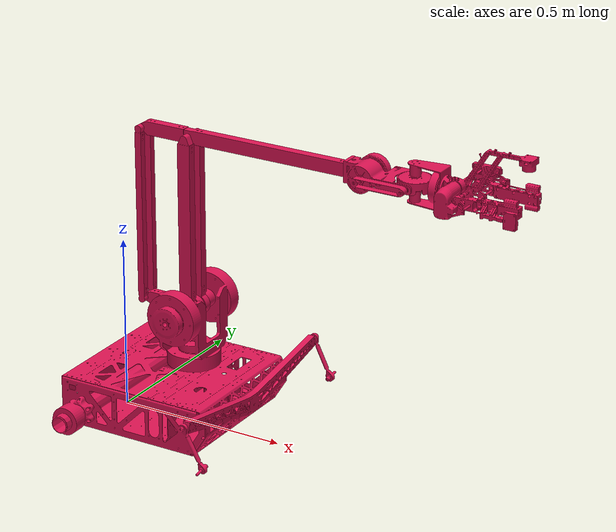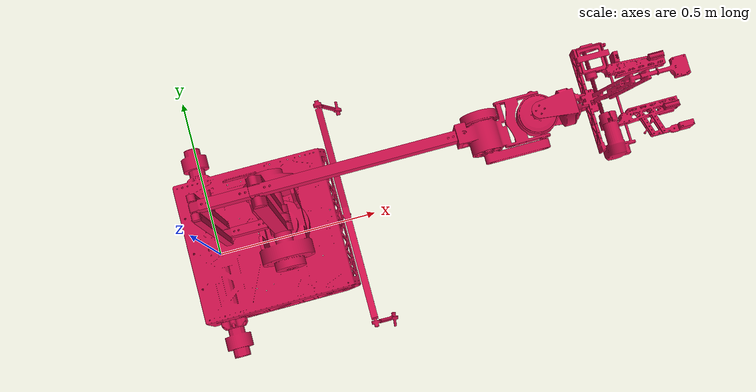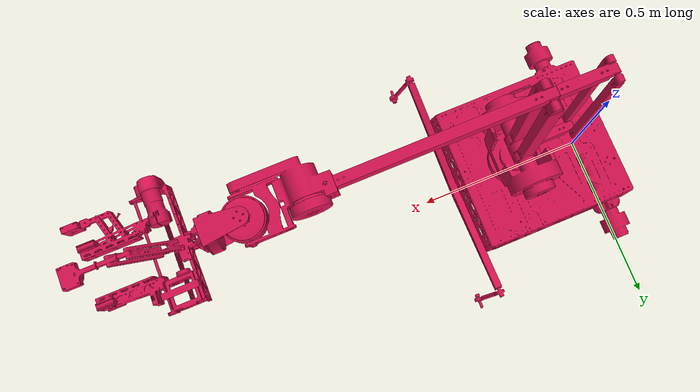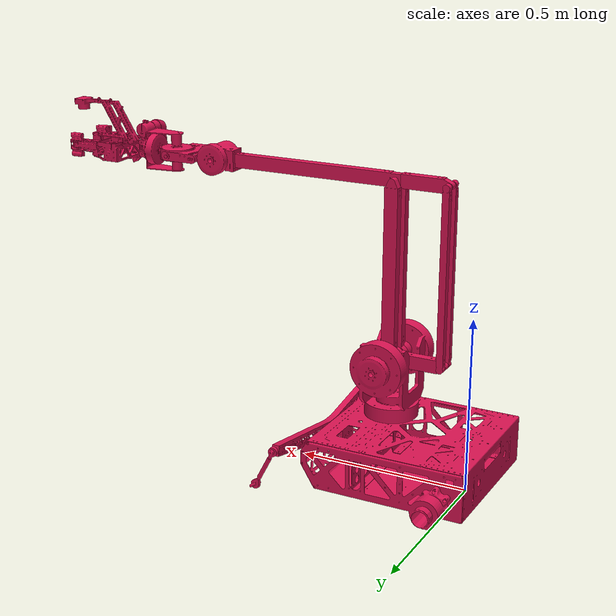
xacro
<?xml version="1.0" encoding="utf-8"?>
<robot name="arm"  xmlns:xacro="http://www.ros.org/wiki/xacro">
    <!-- Loading args -->
    <xacro:arg name="gazebo" default="true"/>
    <xacro:arg name="robot_name" default="arm"/>
    <xacro:arg name="arm" default="false"/>
    <xacro:arg name="use_mock_hardware" default="false"/>
    <xacro:arg name="rover_description_dir" default="$(find rover_description)" />

    <!-- Generated URDF -->
    <link name="gearbox">
        <visual>
            <origin xyz="0 2.4651903288156618919e-32 0" rpy="3.141592653589793116 -0 -8.5706935653614731626e-49" />
            <geometry>
                <mesh filename="file://$(arg rover_description_dir)/arm/newmeshes/gearbox.stl"/>
            </geometry>
            <material name="gearbox_material">
                <color rgba="0.86666666666666669627 0.074509803921568626417 0.32549019607843138191 1.0"/>
            </material>
        </visual>
        <collision>
            <origin xyz="0 2.4651903288156618919e-32 -0.035000000000000003331" rpy="3.141592653589793116 -0 -8.5706935653614731626e-49" />
            <geometry>
                <cylinder length="0.010000000000000000208" radius="0.074999999999999997224" />
            </geometry>
        </collision>
        <collision>
            <origin xyz="0 2.4651903288156618919e-32 -0.048000000000000000999" rpy="3.141592653589793116 -0 -8.5706935653614731626e-49" />
            <geometry>
                <cylinder length="0.035000000000000003331" radius="0.043999999999999997446" />
            </geometry>
        </collision>
        <collision>
            <origin xyz="0.05999999999999999778 2.4651903288156618919e-32 -0.05999999999999999778" rpy="3.141592653589793116 -0 -1.570796326794896558" />
            <geometry>
                <box size="0.14999999999999999445 0.010000000000000000208 0.040000000000000000833" />
            </geometry>
        </collision>
        <collision>
            <origin xyz="0.05999999999999999778 -0.055000000000000000278 -0.13500000000000000888" rpy="3.141592653589793116 -0 -1.570796326794896558" />
            <geometry>
                <box size="0.040000000000000000833 0.010000000000000000208 0.16000000000000000333" />
            </geometry>
        </collision>
        <collision>
            <origin xyz="0.05999999999999999778 0.055000000000000000278 -0.13500000000000000888" rpy="3.141592653589793116 -0 -1.570796326794896558" />
            <geometry>
                <box size="0.040000000000000000833 0.010000000000000000208 0.16000000000000000333" />
            </geometry>
        </collision>
        <collision>
            <origin xyz="-0.05999999999999999778 2.4651903288156618919e-32 -0.05999999999999999778" rpy="3.141592653589793116 -0 -1.570796326794896558" />
            <geometry>
                <box size="0.14999999999999999445 0.010000000000000000208 0.040000000000000000833" />
            </geometry>
        </collision>
        <collision>
            <origin xyz="-0.05999999999999999778 -0.055000000000000000278 -0.13500000000000000888" rpy="3.141592653589793116 -0 -1.570796326794896558" />
            <geometry>
                <box size="0.040000000000000000833 0.010000000000000000208 0.16000000000000000333" />
            </geometry>
        </collision>
        <collision>
            <origin xyz="-0.05999999999999999778 0.055000000000000000278 -0.13500000000000000888" rpy="3.141592653589793116 -0 -1.570796326794896558" />
            <geometry>
                <box size="0.040000000000000000833 0.010000000000000000208 0.16000000000000000333" />
            </geometry>
        </collision>
        <collision>
            <origin xyz="0 2.4651903288156618919e-32 -0.16500000000000000777" rpy="-1.570796326794896558 -0 -8.5706935653614731626e-49" />
            <geometry>
                <cylinder length="0.16000000000000000333" radius="0.025000000000000001388" />
            </geometry>
        </collision>
        <collision>
            <origin xyz="8.2522951990120668626e-49 0.09500000000000000111 -0.16500000000000000777" rpy="-1.570796326794896558 -0 -8.5706935653614731626e-49" />
            <geometry>
                <cylinder length="0.040000000000000000833" radius="0.074999999999999997224" />
            </geometry>
        </collision>
        <collision>
            <origin xyz="1.0684550626089307014e-48 0.12299999999999999822 -0.16500000000000000777" rpy="-1.570796326794896558 -0 -8.5706935653614731626e-49" />
            <geometry>
                <cylinder length="0.035000000000000003331" radius="0.043999999999999997446" />
            </geometry>
        </collision>
        <collision>
            <origin xyz="-8.2522951990120668626e-49 -0.09500000000000000111 -0.16500000000000000777" rpy="1.570796326794896558 -0 -8.5706935653614731626e-49" />
            <geometry>
                <cylinder length="0.040000000000000000833" radius="0.074999999999999997224" />
            </geometry>
        </collision>
        <collision>
            <origin xyz="-1.0684550626089307014e-48 -0.12299999999999999822 -0.16500000000000000777" rpy="1.570796326794896558 -0 -8.5706935653614731626e-49" />
            <geometry>
                <cylinder length="0.035000000000000003331" radius="0.043999999999999997446" />
            </geometry>
        </collision>
        <inertial>
            <origin xyz="2.558521196269415307e-06 -2.5804048544815182493e-06 -0.11873329240962517128" rpy="0 0 0"/>
            <mass value="7.8835913444856782206" />
            <inertia ixx="0.092107948674126569055" ixy="2.7189957247125400849e-06" ixz="-2.3903157004658651547e-06" iyy="0.050452829745700415731" iyz="9.7642586194091336146e-06" izz="0.065017320943512479925" />
        </inertial>
    </link>

    <link name="l1_alpha">
        <visual>
            <origin xyz="0 0 -0.036699999999999961819" rpy="1.570796326794896558 1.5707963267948938935 0" />
            <geometry>
                <mesh filename="file://$(arg rover_description_dir)/arm/newmeshes/l1_alpha.stl"/>
            </geometry>
            <material name="l1_alpha_material">
                <color rgba="0.86666666666666669627 0.074509803921568626417 0.32549019607843138191 1.0"/>
            </material>
        </visual>
        <collision>
            <origin xyz="4.3478165439869462079e-18 -3.0830227432059023959e-17 -0.025699999999999955519" rpy="-3.1415926535897926719 -2.802747948369002084e-15 1.570796326794896558" />
            <geometry>
                <cylinder length="0.021999999999999998723" radius="0.032000000000000000666" />
            </geometry>
        </collision>
        <collision>
            <origin xyz="4.3478165439860941765e-18 -0.27000000000000007327 -0.025700000000000711858" rpy="1.570796326794896558 1.5707963267948938935 0" />
            <geometry>
                <box size="0.025000000000000001388 0.037999999999999999056 0.47999999999999998224" />
            </geometry>
        </collision>
        <collision>
            <origin xyz="2.4901131115561601639e-17 -1.7657312074724714451e-16 0.026300000000000045564" rpy="-3.1415926535897926719 -2.802747948369002084e-15 1.570796326794896558" />
            <geometry>
                <cylinder length="0.021999999999999998723" radius="0.032000000000000000666" />
            </geometry>
        </collision>
        <collision>
            <origin xyz="2.4901131115560751149e-17 -0.2700000000000001843 0.026299999999999282285" rpy="1.570796326794896558 1.5707963267948938935 0" />
            <geometry>
                <box size="0.025000000000000001388 0.037999999999999999056 0.47999999999999998224" />
            </geometry>
        </collision>
        <inertial>
            <origin xyz="-6.5605808530515644914e-16 -0.23328621342780628267 -6.2450045135165055399e-17" rpy="0 0 0"/>
            <mass value="0.94332586983199562258" />
            <inertia ixx="0.033448744649335601653" ixy="-2.9524164513920976063e-32" ixz="-2.0062381951294159102e-19" iyy="0.00087421429984669717008" iyz="-8.9875581047345195556e-17" izz="0.032941165271890511523" />
        </inertial>
    </link>

    <link name="l2_alpha_long">
        <visual>
            <origin xyz="1.1102230246251565404e-16 0 1.2143064331837649661e-17" rpy="-3.141592653589793116 -2.2632479597972562571e-15 1.4791141972893424845e-30" />
            <geometry>
                <mesh filename="file://$(arg rover_description_dir)/arm/newmeshes/l2_alpha_long.stl"/>
            </geometry>
            <material name="l2_alpha_long_material">
                <color rgba="0.86666666666666669627 0.074509803921568626417 0.32549019607843138191 1.0"/>
            </material>
        </visual>
        <!-- Shapes for l2_alpha_long -->
        <collision>
            <origin xyz="1.1102230246251565404e-16 0.014999999999999999445 1.2332512979113024229e-17" rpy="-3.141592653589793116 -2.2632479597972562571e-15 1.4791141972893424845e-30" />
            <geometry>
                <box size="0.035000000000000003331 0.05999999999999999778 0.021799999999999999933" />
            </geometry>
        </collision>
        <collision>
            <origin xyz="1.110223024625157773e-16 0.25 1.5300541786427231954e-17" rpy="-3.141592653589793116 -2.2632479597972562571e-15 1.4791141972893424845e-30" />
            <geometry>
                <box size="0.037999999999999999056 0.46999999999999997335 0.025000000000000001388" />
            </geometry>
        </collision>
        <collision>
            <origin xyz="1.1102230246251590056e-16 0.5 1.8458019241016814247e-17" rpy="-3.141592653589793116 -2.2632479597972562571e-15 1.4791141972893424845e-30" />
            <geometry>
                <box size="0.05999999999999999778 0.02999999999999999889 0.048000000000000000999" />
            </geometry>
        </collision>
        <collision>
            <origin xyz="1.274308501710460247e-16 0.54849999999999998757 -0.0072499999999999812858" rpy="-3.141592653589793116 -2.2632479597972562571e-15 1.4791141972893424845e-30" />
            <geometry>
                <cylinder length="0.10000000000000000555" radius="0.043499999999999997002" />
            </geometry>
        </collision>
        <collision>
            <origin xyz="2.6718641168852655864e-16 0.54849999999999998757 -0.068999999999999991895" rpy="-3.141592653589793116 -2.2632479597972562571e-15 1.4791141972893424845e-30" />
            <geometry>
                <cylinder length="0.0240000000000000005" radius="0.01200000000000000025" />
            </geometry>
        </collision>
        <inertial>
            <origin xyz="-2.0101690449400311959e-16 0.14592092316588314849 -8.7916251313975982188e-17" rpy="0 0 0"/>
            <mass value="0.41795070944222811882" />
            <inertia ixx="0.010968252318546299964" ixy="1.6586140805282821319e-32" ixz="-7.6840734421473914162e-20" iyy="9.8064013102507565267e-05" iyz="-1.3771830278749218651e-19" izz="0.011002203850056069268" />
        </inertial>
    </link>

    <joint name="l1a_tp" type="revolute">
        <origin xyz="-1.3322676295501878485e-15 -0.50000000000000133227 -1.5026893879883321953e-18" rpy="1.1042302148529803472e-15 -7.3934705663056347212e-16 -1.5707963267948998887" />
        <parent link="l1_alpha" />
        <child link="l2_alpha_long" />
        <axis xyz="0 0 1"/>
        <limit effort="20" velocity="20" lower="-1.3788101090755202627" upper="3.141592653589793116"/>
        <joint_properties friction="0.5" damping="0.5"/>
        <!-- Elbow -->
        <mimic joint="J3" multiplier="1"/>
    </joint>

    <joint name="J2" type="revolute">
        <origin xyz="-1.6653345369377348106e-16 -2.3967136596913301438e-07 -0.16497726032863463397" rpy="1.5707963267948961139 6.0217020942552186975e-15 5.3207089380869679575e-16" />
        <parent link="gearbox" />
        <child link="l1_alpha" />
        <axis xyz="0 0 1"/>
        <limit effort="20" velocity="20" lower="-2.2689280275926284602" upper="2.2689280275926284602"/>
        <joint_properties friction="0.5" damping="0.5"/>
    </joint>

    <link name="l2_beta">
        <visual>
            <origin xyz="0 5.5511151231257827021e-17 -3.4694469519536141888e-18" rpy="-3.141592653589793116 -5.71085303237718791e-16 -1.0324287375306363738e-31" />
            <geometry>
                <mesh filename="file://$(arg rover_description_dir)/arm/newmeshes/l2_beta.stl"/>
            </geometry>
            <material name="l2_beta_material">
                <color rgba="0.86666666666666669627 0.074509803921568626417 0.32549019607843138191 1.0"/>
            </material>
        </visual>
        <collision>
            <origin xyz="0 5.5511151231257827021e-17 -3.4694469519536141888e-18" rpy="-3.141592653589793116 -5.7108530323771790353e-16 1.9975444575453675019e-30" />
            <geometry>
                <cylinder length="0.021999999999999998723" radius="0.032000000000000000666" />
            </geometry>
        </collision>
        <collision>
            <origin xyz="-0.092999999999999999334 5.5511151231257642132e-17 -5.6580380153061379809e-17" rpy="-3.141592653589793116 -5.7108530323771790353e-16 1.9975444575453675019e-30" />
            <geometry>
                <box size="0.13400000000000000799 0.037999999999999999056 0.025000000000000001388" />
            </geometry>
        </collision>
        <inertial>
            <origin xyz="-0.067222086625795207659 -2.2734157836893688816e-15 4.1346710175237741049e-16" rpy="0 0 0"/>
            <mass value="0.28202404209848125349" />
            <inertia ixx="7.0414185264169789355e-05" ixy="-4.8860468682764694418e-35" ixz="-4.5301784482906341954e-19" iyy="0.0008227401802816908076" iyz="-9.6972564277976928301e-21" izz="0.0008636719389845305293" />
        </inertial>
    </link>

    <link name="l1_beta">
        <visual>
            <origin xyz="0 0 -2.7755575615628913511e-17" rpy="-1.5707963267949001107 3.3735685396344910483e-18 5.0536401740721068784e-31" />
            <geometry>
                <mesh filename="file://$(arg rover_description_dir)/arm/newmeshes/l1_beta.stl"/>
            </geometry>
            <material name="l1_beta_material">
                <color rgba="0.86666666666666669627 0.074509803921568626417 0.32549019607843138191 1.0"/>
            </material>
        </visual>
        <collision>
            <origin xyz="-7.7592076411601941632e-20 0.24999999999999997224 -0.023000000000000880851" rpy="-1.5707963267949001107 3.3735685396347876415e-18 0" />
            <geometry>
                <box size="0.025000000000000001388 0.020000000000000000416 0.52000000000000001776" />
            </geometry>
        </collision>
        <collision>
            <origin xyz="7.7592076411601941632e-20 0.25000000000000011102 0.022999999999999118372" rpy="-1.5707963267949001107 3.3735685396347876415e-18 0" />
            <geometry>
                <box size="0.025000000000000001388 0.020000000000000000416 0.52000000000000001776" />
            </geometry>
        </collision>
        <inertial>
            <origin xyz="2.798836614153263186e-16 0.24999999999999847344 -3.6337474806682215804e-17" rpy="1.5708 0 0"/>
            <mass value="0.37975038798634441761" />
            <inertia ixx="0.0087376642758323439658" ixy="-9.4160793574334216518e-33"  ixz="-2.3797630924453913318e-18" iyy="0.0086254087709059599348" iyz="-2.9737595635754853878e-17" izz="0.00016366413473864460919" />
        </inertial>
    </link>

    <link name="l2_alpha_short">
        <visual>
            <origin xyz="0 0 1.040839379542004596e-17" rpy="3.141592653589793116 5.9743071005974240584e-16 -4.93038065763027281e-32" />
            <geometry>
                <mesh filename="file://$(arg rover_description_dir)/arm/newmeshes/l2_alpha_short.stl"/>
            </geometry>
            <material name="l2_alpha_short_material">
                <color rgba="0.86666666666666669627 0.074509803921568626417 0.32549019607843138191 1.0"/>
            </material>
        </visual>
        <!-- Shapes for l2_alpha_short -->
        <collision>
            <origin xyz="-0.074999999999999997224 3.6977854932227044706e-33 5.52156970499007227e-17" rpy="3.141592653589793116 5.9743071005974240584e-16 -4.93038065763027281e-32" />
            <geometry>
                <box size="0.11999999999999999556 0.037999999999999999056 0.025000000000000001388" />
            </geometry>
        </collision>
        <collision>
            <origin xyz="-0.01200000000000000025 5.9164567891563271188e-34 1.7577562316136954978e-17" rpy="3.141592653589793116 5.9743071005974240584e-16 -4.93038065763027281e-32" />
            <geometry>
                <box size="0.020000000000000000416 0.021999999999999998723 0.021799999999999999933" />
            </geometry>
        </collision>
        <collision>
            <origin xyz="0 0 1.040839379542004596e-17" rpy="3.141592653589793116 5.9743071005974240584e-16 -4.93038065763027281e-32" />
            <geometry>
                <cylinder length="0.021799999999999999933" radius="0.010000000000000000208" />
            </geometry>
        </collision>
        <inertial>
            <origin xyz="-0.043544020231667764087 -1.2809465666530898926e-16 -4.8153669152387651739e-17" rpy="0 0 0"/>
            <mass value="0.15031228701511734069" />
            <inertia ixx="2.9990353576770037848e-05" ixy="1.1785510520822123041e-35" ixz="1.1069940729575857458e-19" iyy="0.0002053495669084461192" iyz="2.424785936437313021e-22" izz="0.00021528281583517777848" />
        </inertial>
    </link>

    <joint name="l1b_tp" type="revolute">
        <origin xyz="-9.7144514654701197287e-17 0.50000000000000077716 -1.7928585235204219303e-16" rpy="-3.1415926535897926719 7.7419697890140603855e-17 3.141592653589793116" />
        <parent link="l1_beta" />
        <child link="l2_alpha_short" />
        <axis xyz="0 0 1"/>
        <limit effort="20" velocity="20" lower="-3.141592653589793116" upper="1.3962634015954635824"/>
        <joint_properties friction="0.5" damping="0.5"/>
    </joint>

    <joint name="l1b_bp" type="revolute">
        <origin xyz="-0.14999999999999968914 2.2204460492503130808e-16 1.4483511656307847607e-16" rpy="3.1415926535897926719 2.5448498731100300324e-15 -8.5834704353344191844e-15" />
        <parent link="l2_beta" />
        <child link="l1_beta" />
        <axis xyz="0 0 1"/>
        <limit effort="20" velocity="20" lower="-1.570796326794896558" upper="3.141592653589793116"/>
        <joint_properties friction="0.5" damping="0.5"/>
        <mimic joint="J2" multiplier="-1"/>
    </joint>

    <joint name="J3" type="revolute">
        <origin xyz="2.7755575615628913511e-17 -2.3967136592029097706e-07 -0.1649772603286343009" rpy="1.570796326794896558 7.3420626327675113628e-16 -1.8112369360797040431e-15" />
        <parent link="gearbox" />
        <child link="l2_beta" />
        <axis xyz="0 0 1"/>
        <limit effort="20" velocity="20" lower="-0.69813170079773179122" upper="3.8397243543875250182"/>
        <joint_properties friction="0.5" damping="0.5"/>
    </joint>

        <link name="wrist_base">
        <visual>
            <origin xyz="-0.8698274614268546312 -0.067179037801095395355 0.5051741548438247742" rpy="3.6531397435929253516e-16 1.3616764181204636941 2.539159475309284493e-30" />
            <geometry>
                <mesh filename="file://$(arg rover_description_dir)/arm/newmeshes/wrist_base.stl"/>
            </geometry>
            <material name="wrist_base_material">
                <color rgba="0.86666666666666669627 0.074509803921568626417 0.32549019607843138191 1.0"/>
            </material>
        </visual>
        <collision>
            <origin xyz="-0.8698274614268546312 -0.067179037801095395355 0.5051741548438247742" rpy="3.6531397435929253516e-16 1.3616764181204636941 2.539159475309284493e-30" />
            <geometry>
                <mesh filename="file://$(arg rover_description_dir)/arm/newmeshes/wrist_base.stl"/>
            </geometry>
        </collision>
        <inertial>
            <origin xyz="0.00022142383999101958249 -0.0029216951159842974479 -0.064240355589534670067" rpy="0 0 0"/>
            <mass value="1.2082462644559042175" />
            <inertia ixx="0.0043513944585749919636" ixy="-1.2156132459723691896e-07" ixz="2.2627320885355476461e-05" iyy="0.0033607936718869951993" iyz="-0.0003053178521962343064" izz="0.0017777958572915036114" />
        </inertial>
    </link>

    <link name="wrist_y">
        <visual>
            <origin xyz="3.6637359812630165834e-15 -0.019472222222249202517 -0.056404154590523086776" rpy="1.57079632679489678 -8.7768611008370995477e-16 -5.9164567891575885406e-31" />
            <geometry>
                <mesh filename="file://$(arg rover_description_dir)/arm/newmeshes/wrist_y.stl"/>
            </geometry>
            <material name="wrist_y_material">
                <color rgba="0.86666666666666669627 0.074509803921568626417 0.32549019607843138191 1.0"/>
            </material>
        </visual>
        <collision>
            <origin xyz="3.6637359812630165834e-15 -0.019472222222249202517 -0.056404154590523086776" rpy="1.57079632679489678 -8.7768611008370995477e-16 -5.9164567891575885406e-31" />
            <geometry>
                <mesh filename="file://$(arg rover_description_dir)/arm/newmeshes/wrist_y.stl"/>
            </geometry>
        </collision>
        <inertial>
            <origin xyz="-0.00018891439073690597999 -0.0031051262217681695199 -0.056472095043458014896" rpy="0 0 0"/>
            <mass value="0.50335394890075380037" />
            <inertia ixx="0.00033649678090681060891" ixy="1.0236561382054082051e-06" ixz="-2.8326670416610077628e-06" iyy="0.00057984402844556170217" iyz="-7.4786326924921533174e-07" izz="0.00031522264199886605458" />
        </inertial>
    </link>

    <link name="wrist_z">
        <visual>
            <origin xyz="8.8416687166192886593e-16 -0.086000000000003851142 0.0075999999999962764008" rpy="1.5707963267948943376 7.503438127080070259e-09 -2.2461611352862218201e-30" />
            <geometry>
                <mesh filename="file://$(arg rover_description_dir)/arm/newmeshes/wrist_z.stl"/>
            </geometry>
            <material name="wrist_z_material">
                <color rgba="0.86666666666666669627 0.074509803921568626417 0.32549019607843138191 1.0"/>
            </material>
        </visual>
        <collision>
            <origin xyz="8.8416687166192886593e-16 -0.086000000000003851142 0.0075999999999962764008" rpy="1.5707963267948943376 7.503438127080070259e-09 -2.2461611352862218201e-30" />
            <geometry>
                <mesh filename="file://$(arg rover_description_dir)/arm/newmeshes/wrist_z.stl"/>
            </geometry>
        </collision>
        <inertial>
            <origin xyz="-8.6591673600461757112e-05 -0.05422662841967119951 0.0075826048742989793014" rpy="0 0 0"/>
            <mass value="0.63441727994874086427" />
            <inertia ixx="0.0011906186990863546187" ixy="-1.4982863741214071716e-06" ixz="1.0347484209167684391e-06" iyy="0.00081688665150028412585" iyz="-4.071613799946460942e-06" izz="0.00082405891158379837233" />
        </inertial>
    </link>

    <link name="wrist_x">
        <visual>
            <origin xyz="4.3259666682171626917e-16 1.1102230246251565404e-16 0.0050000000000000044409" rpy="-4.2216384497550468781e-30 -1.342228260025201518e-17 3.141592653589793116" />
            <geometry>
                <mesh filename="file://$(arg rover_description_dir)/arm/newmeshes/wrist_x.stl"/>
            </geometry>
            <material name="wrist_x_material">
                <color rgba="0.86666666666666669627 0.074509803921568626417 0.32549019607843138191 1.0"/>
            </material>
        </visual>
        <collision>
            <origin xyz="4.3259666682171626917e-16 1.1102230246251565404e-16 0.0050000000000000044409" rpy="-4.2216384497550468781e-30 -1.342228260025201518e-17 3.141592653589793116" />
            <geometry>
                <mesh filename="file://$(arg rover_description_dir)/arm/newmeshes/wrist_x.stl"/>
            </geometry>
        </collision>
        <inertial>
            <origin xyz="3.6896286142739082404e-09 0.00014152000142926432708 -0.0087737949989067035711" rpy="0 0 0"/>
            <mass value="0.089619487694983790416" />
            <inertia ixx="3.3344311196655885329e-05" ixy="1.1347059114350325291e-11" ixz="-5.7917924462758958631e-13" iyy="2.7454637031068149596e-05" iyz="2.6678736316725473389e-08" izz="5.1365095398502499924e-05" />
        </inertial>
    </link>

    <link name="endeffector">
        <visual>
            <origin xyz="0.013169068536704964245 0.10471993463343576281 -0.017082461771415390073" rpy="1.570796326794896558 1.5707963267948961139 0" />
            <geometry>
                <mesh filename="file://$(arg rover_description_dir)/arm/newmeshes/endeffector.stl"/>
            </geometry>
            <material name="endeffector_material">
                <color rgba="0.86666666666666669627 0.074509803921568626417 0.32549019607843138191 1.0"/>
            </material>
        </visual>
        <collision>
            <origin xyz="0.013169068536704964245 0.10471993463343576281 -0.017082461771415390073" rpy="1.570796326794896558 1.5707963267948961139 0" />
            <geometry>
                <mesh filename="file://$(arg rover_description_dir)/arm/newmeshes/endeffector.stl"/>
            </geometry>
        </collision>
        <inertial>
            <origin xyz="0.046425921955267304697 0.0545297563008692171 -0.049927852026562011267" rpy="0 0 0"/>
            <mass value="0.87506226675421805439" />
            <inertia ixx="0.0073187400224515690439" ixy="-0.001294567145964564377" ixz="-0.00016725535159065060636" iyy="0.0065538435018641988047" iyz="-0.00049799904754132000208" izz="0.0034636859773534405676" />
        </inertial>
    </link>

    <link name="rightfinger">
        <visual>
            <origin xyz="-0.0038280201915051881301 -0.0662186492683292105 -0.062306000971862306181" rpy="-1.570796326794896558 -1.5707963267948961139 0" />
            <geometry>
                <mesh filename="file://$(arg rover_description_dir)/arm/newmeshes/rightfinger.stl"/>
            </geometry>
            <material name="rightfinger_material">
                <color rgba="0.86666666666666669627 0.074509803921568626417 0.32549019607843138191 1.0"/>
            </material>
        </visual>
        <collision>
            <origin xyz="-0.0038280201915051881301 -0.0662186492683292105 -0.062306000971862306181" rpy="-1.570796326794896558 -1.5707963267948961139 0" />
            <geometry>
                <mesh filename="file://$(arg rover_description_dir)/arm/newmeshes/rightfinger.stl"/>
            </geometry>
        </collision>
        <inertial>
            <origin xyz="9.4168861722027007247e-06 -0.10779482125060108055 -0.0022829350450216459589" rpy="0 0 0"/>
            <mass value="0.29980462795384704711" />
            <inertia ixx="0.0011562665212638270022" ixy="3.3409839205300657825e-07" ixz="-2.2351786283388430174e-07" iyy="0.00022118329546272450393" iyz="0.00014053175319044133125" izz="0.0010337592644359418735" />
        </inertial>
    </link>

    <joint name="rf_slide" type="prismatic">
        <origin xyz="0.016997088728210041353 0.038501285365106330261 -0.086806011861509435601" rpy="3.1415926535897917837 2.0303880071270236139e-16 -2.6922974107278760987e-15" />
        <parent link="endeffector" />
        <child link="rightfinger" />
        <axis xyz="0 0 1"/>
        <limit effort="1" velocity="1" lower="-0.036999999999999998168" upper="0.050000000000000002776"/>
        <joint_properties friction="0.0"/>
    </joint>

    <link name="leftfinger">
        <visual>
            <origin xyz="-0.0038280201915514844302 0.066218649268374729644 -0.051670924514692642693" rpy="1.570796326794896558 1.570796326794896336 0" />
            <geometry>
                <mesh filename="file://$(arg rover_description_dir)/arm/newmeshes/leftfinger.stl"/>
            </geometry>
            <material name="leftfinger_material">
                <color rgba="0.86666666666666669627 0.074509803921568626417 0.32549019607843138191 1.0"/>
            </material>
        </visual>
        <collision>
            <origin xyz="-0.0038280201915514844302 0.066218649268374729644 -0.051670924514692642693" rpy="1.570796326794896558 1.570796326794896336 0" />
            <geometry>
                <mesh filename="file://$(arg rover_description_dir)/arm/newmeshes/leftfinger.stl"/>
            </geometry>
        </collision>
        <inertial>
            <origin xyz="-3.9247710365430919246e-05 0.091116325080211696408 -0.013112018446182441278" rpy="0 0 0"/>
            <mass value="0.25909722454588979268" />
            <inertia ixx="0.00080276598949127904968" ixy="-2.1013472120517466236e-07" ixz="1.9150338494583977163e-07" iyy="7.8791455805628143449e-05" iyz="5.1139274068988138959e-05" izz="0.00081345557346948775459" />
        </inertial>
    </link>

    <link name="actuator">
        <visual>
            <origin xyz="0.039170924514693186702 -0.0038230129788342503971 0.096281061460675054775" rpy="7.5616186785847547248e-05 -8.8571055390687568829e-16 -2.8639594395157376508e-31" />
            <geometry>
                <mesh filename="file://$(arg rover_description_dir)/arm/newmeshes/actuator.stl"/>
            </geometry>
            <material name="actuator_material">
                <color rgba="0.86666666666666669627 0.074509803921568626417 0.32549019607843138191 1.0"/>
            </material>
        </visual>
        <collision>
            <origin xyz="0.039170924514693186702 -0.0038230129788342503971 0.096281061460675054775" rpy="7.5616186785847547248e-05 -8.8571055390687568829e-16 -2.8639594395157376508e-31" />
            <geometry>
                <mesh filename="file://$(arg rover_description_dir)/arm/newmeshes/actuator.stl"/>
            </geometry>
        </collision>
        <inertial>
            <origin xyz="-1.7829162451965530067e-09 2.7874518482862435838e-10 0.020804433981957873301" rpy="0 0 0"/>
            <mass value="0.0049949255647874449965" />
            <inertia ixx="1.9746367805634570348e-06" ixy="1.354893441064049574e-14" ixz="-3.0677562827649146694e-13" iyy="1.977584514312664286e-06" iyz="2.898608978946976878e-14" izz="7.3041747572561286302e-08" />
        </inertial>
    </link>

    <joint name="actuator_head" type="prismatic">
        <origin xyz="-1.2287630367202595494e-05 0.16249999953544680409 -0.012499999999999372724" rpy="1.5707207106081135795 1.5707963267948830133 0" />
        <parent link="leftfinger" />
        <child link="actuator" />
        <axis xyz="0 0 1"/>
        <limit effort="1" velocity="1" lower="-0.050000000000000002776" upper="0"/>
        <joint_properties friction="0.0"/>
    </joint>

    <joint name="lf_slide" type="prismatic">
        <origin xyz="0.016997088728210152375 0.038501285365106330261 0.057839261954157776546" rpy="8.5069187729094081759e-15 1.0192574742372495045e-14 2.6645355670169139211e-15" />
        <parent link="endeffector" />
        <child link="leftfinger" />
        <axis xyz="0 0 1"/>
        <limit effort="1" velocity="1" lower="-0.036999999999999998168" upper="0.050000000000000002776"/>
        <joint_properties friction="0.0"/>
    </joint>

    <joint name="wrist_to_ee" type="fixed">
        <origin xyz="-0.011500000127557708993 -0.016999999913710706068 -0.024999999999999911182" rpy="-1.5707963267948921171 -6.1390546218790660838e-07 1.5707963192914580208" />
        <parent link="wrist_x" />
        <child link="endeffector" />
        <axis xyz="0 0 1"/>
        <limit effort="1" velocity="1" />
        <joint_properties friction="0.0"/>
    </joint>

    <joint name="J6" type="revolute">
        <origin xyz="-0.00046582360769774496488 -0.086000000000003740119 0.00713417639229629863" rpy="-1.5707963267948990005 7.5034665064024681681e-09 1.0332187252429466388e-16" />
        <parent link="wrist_z" />
        <child link="wrist_x" />
        <axis xyz="0 0 1"/>
        <limit effort="1" velocity="1" lower="-3.141592653589793116" upper="3.141592653589793116"/>
        <joint_properties friction="0.0"/>
    </joint>

    <joint name="J5" type="revolute">
        <origin xyz="-1.4432899320127035026e-15 -0.010372222222245208734 -0.056404154590515238887" rpy="-1.5707963267948328312 1.5707963267948086283 0" />
        <parent link="wrist_y" />
        <child link="wrist_z" />
        <axis xyz="0 0 1"/>
        <limit effort="1" velocity="1" lower="-3.141592653589793116" upper="3.141592653589793116"/>
        <joint_properties friction="0.0"/>
    </joint>

    <joint name="J4" type="revolute">
        <origin xyz="4.4408920985006261617e-16 0.056950000000000632061 -0.19825000000000037037" rpy="-1.5707963267948878983 1.5707963267948819031 0" />
        <parent link="wrist_base" />
        <child link="wrist_y" />
        <axis xyz="0 0 1"/>
        <limit effort="1" velocity="1" lower="-6.283185307179586232" upper="6.283185307179586232"/>
        <joint_properties friction="0.0"/>
    </joint>

    <joint name="l2_to_wrist" type="fixed">
        <origin xyz="-5.5511151231257827021e-16 0.48499999999999943157 -2.608252672612406016e-17" rpy="1.57079632679489678 -2.2632479597972562571e-15 -7.2835139864340826345e-17" />
        <parent link="l2_alpha_long" />
        <child link="wrist_base" />
        <axis xyz="0 0 1"/>
        <limit effort="1" velocity="1" />
        <joint_properties friction="0.0"/>
    </joint>
    <!-- End of Generated URDF -->

    <!-- Close ckc -->

    <!-- gazebo parameters-->
    <gazebo>
    </gazebo>

    <!--xacro:include filename="arm_odom.xacro"/ -->

    <!-- gz start -->

    <xacro:unless value="$(arg gazebo)">
        <!-- not gazebo start -->
        <xacro:include filename="$(arg rover_description_dir)/arm/urdf/newarm.ros2_control.xacro" />
        <!-- not gazebo middle -->
        <xacro:newarm_ros2_control use_mock_hardware="$(arg use_mock_hardware)"/>
        <!-- not gazebo end -->
    </xacro:unless>

    <!-- gz middle -->

    <xacro:if value="$(arg gazebo)">
        <!-- heehee gazebo start -->
        <!-- hahah gazebo end -->
    </xacro:if>
    <!-- gz end -->

    <!-- Standalone arm definition -->
    <xacro:unless value="$(arg arm)">
        <link name="base_link"></link>
        <joint name="base_link_to_chassis" type="fixed">
            <parent link="base_link"/>
            <child link="chassis" />
            <origin rpy="0.0 0 0" xyz="0 0 0.07"/>
        </joint>
        <!-- Chassis for standalone arm -->
        <link name="chassis">
            <visual>
                <origin xyz="0 0 0" rpy="0 -0 1.570796326794896558" />
                <geometry>
                    <mesh filename="file://$(arg rover_description_dir)/base/meshes/chassis.stl"/>
                </geometry>
                <material name="chassis_material">
                    <color rgba="0.86666666666666669627 0.074509803921568626417 0.32549019607843138191 1.0"/>
                </material>
            </visual>
            <collision>
                <origin xyz="0 0 0" rpy="0 -0 1.570796326794896558" />
                <geometry>
                    <mesh filename="file://$(arg rover_description_dir)/base/meshes/chassis.stl"/>
                </geometry>
            </collision>
            <inertial>
                <origin xyz="-0.022980723180786852278 -0.00012909338240177009919 0.024515364506931154598" rpy="0 0 0"/>
                <mass value="8.3419541100883822793" />
                <inertia ixx="0.21737687093594909582" ixy="0.00013546851964914204689" ixz="-0.0088627259627339256831" iyy="0.45541406320296262678" iyz="-0.00021657327861208234047" izz="0.59726536058024171094" />
            </inertial>
        </link>

        <joint name="J1" type="revolute">
            <origin xyz="0.22899999999999565148 1.1102230246251564172e-16 0.11707476398169122667" rpy="-3.141592653589793116 -1.3309679851047901909e-16 0" />
            <parent link="chassis" />
            <child link="gearbox" />
            <axis xyz="0 0 1"/>
            <limit effort="1" velocity="1" lower="-3.141592653589793116" upper="3.141592653589793116"/>
            <joint_properties damping="20.0" friction="0.1"/>
        </joint>

        <!-- Origin of arm for IK. Should align with J1, but not -->
        <link name="arm_kinematics_origin"/>
        <joint name="arm_kinematics_origin_joint" type="fixed">
            <origin xyz="0.0 0.0 0.0" rpy="0.0 0.0 0.0" />
            <parent link="chassis" />
            <child link="arm_kinematics_origin" />
        </joint>
        <!-- Origin of arm for IK -->

        <xacro:include filename="newarm_joints.xacro"/>
    </xacro:unless>
    <xacro:if value="$(arg arm)">
        <!-- Origin of arm for IK. Should align with J1, but not -->
        <link name="arm_kinematics_origin"/>
        <joint name="arm_kinematics_origin_joint" type="fixed">
            <origin xyz="0.22899999999999565148 1.1102230246251564172e-16 0.28205202431" rpy="0.0 0.0 0.0" />
            <parent link="chassis" />
            <child link="arm_kinematics_origin" />
        </joint>
        <!-- Origin of arm for IK -->

    </xacro:if>

    <link name="endeffector_kinematics"/>
    <joint name="endeffector_kinematics_joint" type="fixed">
        <!-- before rotating to match IK function expected 0: 1.5707963 0.0 1.5707963 -->
        <origin xyz="0.0138 0.0 -0.012512" rpy="1.5707963 0.0 1.5707963" />
        <parent link="endeffector" />
        <child link="endeffector_kinematics" />
    </joint>

<!--    z at 1.2321-->

<!--    up 0.0138-->
<!--    forward 0.012512-->

</robot>
